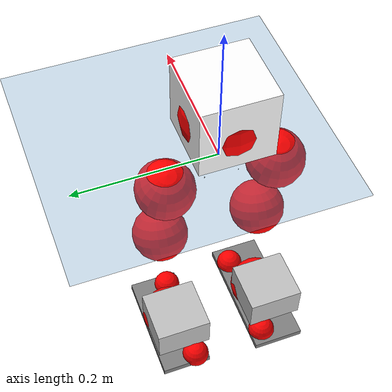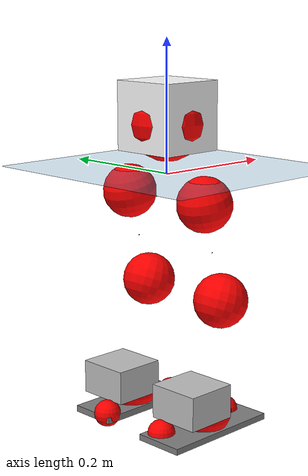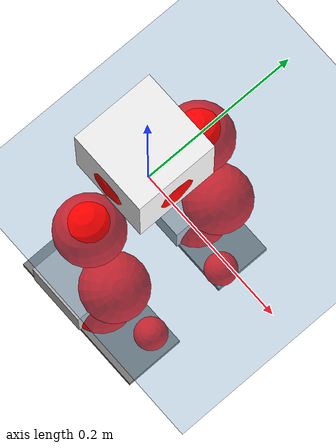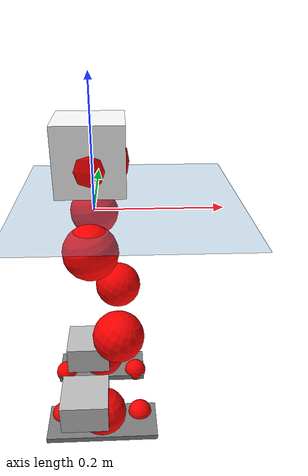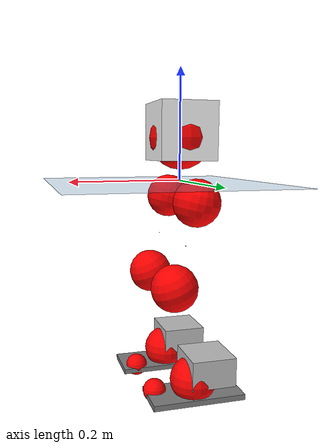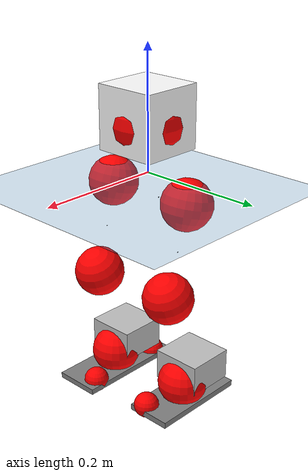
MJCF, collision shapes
<mujoco model="pi_12dof_release_v1">
  <compiler angle="radian" assetdir="assets" balanceinertia="true" inertiafromgeom="false"/>

  <option timestep="0.005" density="1.2" viscosity="2e-05"/>

  <size nkey="1"/>

  <visual>
    <quality shadowsize="8192"/>
    <map shadowclip="0.5"/>
  </visual>

  <default>
    <default class="/">
      <joint armature="0.01" damping="0.01" frictionloss="0.01"/>
      <geom contype="0" conaffinity="0" group="1" solref="-1000 -80"/>
      <site size="0.01 0.005 0.005" group="5"/>
      <general forcelimited="true" biastype="affine" gainprm="20" biasprm="0 -20 -0.5"/>
      <default class="foot">
        <geom size="0.0845 0.036 0.005" type="box" condim="6" group="4" priority="1" friction="0.9 0.2 0.2" solimp="0.015 1 0.005"/>
      </default>
      <default class="reward_collision_sphere">
        <geom group="5" rgba="1 0 0 1"/>
      </default>
    </default>
  </default>

  <asset>
    <texture type="skybox" colorspace="auto" name="//unnamed_texture_0" builtin="gradient" rgb1="0.95 0.95 0.95" rgb2="0.95 0.95 0.95" width="100" height="600"/>
    <texture type="2d" colorspace="auto" name="texplane" builtin="checker" rgb1="0.345 0.575 0.748" rgb2="0.345 0.575 0.748" markrgb="1 1 1" width="512" height="512"/>
    <material name="MatPlane" class="/" texture="texplane" texuniform="true" texrepeat="2 2" specular="0.9"/>
    <mesh name="baselink_1" class="/" file="baselink_1.STL"/>
    <mesh name="r_hip_pitch_link" class="/" file="r_hip_pitch_link.STL"/>
    <mesh name="r_hip_roll_link" class="/" file="r_hip_roll_link.STL"/>
    <mesh name="r_thigh_link" class="/" file="r_thigh_link.STL"/>
    <mesh name="r_calf_link" class="/" file="r_calf_link.STL"/>
    <mesh name="r_ankle_pitch_link" class="/" file="r_ankle_pitch_link.STL"/>
    <mesh name="r_ankle_roll_link" class="/" file="r_ankle_roll_link.STL"/>
    <mesh name="l_hip_pitch_link" class="/" file="l_hip_pitch_link.STL"/>
    <mesh name="l_hip_roll_link" class="/" file="l_hip_roll_link.STL"/>
    <mesh name="l_thigh_link" class="/" file="l_thigh_link.STL"/>
    <mesh name="l_calf_link" class="/" file="l_calf_link.STL"/>
    <mesh name="l_ankle_pitch_link" class="/" file="l_ankle_pitch_link.STL"/>
    <mesh name="l_ankle_roll_link" class="/" file="l_ankle_roll_link.STL"/>
  </asset>

  <worldbody>
    <geom name="floor" class="/" size="100 100 0.125" type="plane" group="0" material="MatPlane"/>
    <light name="toplight_shadow" class="/" pos="0 0 5" dir="0.0990148 0.0990148 -0.990148" type="directional" ambient="0.04 0.04 0.04" diffuse="0.55 0.55 0.55" specular="0.12 0.12 0.12"/>
    <light name="toplight_fill" class="/" pos="0 0 5" dir="0.0990148 0.0990148 -0.990148" type="directional" castshadow="false" ambient="0.04 0.04 0.04" diffuse="0.3 0.3 0.3" specular="0.08 0.08 0.08"/>
    <body name="trunk" pos="-0.00165419 -0.00283819 -0.00165935" quat="0.999999 8.96749e-05 -0.00111833 0.00068807">
      <inertial pos="0.00107997 -0.00108904 0.0450533" quat="0.697161 0.00222786 0.0104981 0.716834" mass="2.35481" diaginertia="0.010184 0.00713396 0.00727391"/>
      <joint name="//unnamed_joint_0" type="free"/>
      <geom name="//unnamed_geom_1" class="/" type="mesh" density="0" rgba="1 1 1 1" mesh="baselink_1"/>
      <geom name="//unnamed_geom_2" class="/" size="0.0513354 0.0513354 0.0513354" pos="0 0 0.0890019" type="box" rgba="1 1 1 1"/>
      <geom name="//unnamed_geom_3" class="reward_collision_sphere" size="0.0564689" pos="0 0 0.0778767"/>
      <site name="imu" class="/" pos="-0.000902566 0.00711139 -0.00250356" size="0.0102671"/>
      <camera name="track" class="/" pos="0 -1.91473 0" quat="0.707107 0.707107 0 0" mode="trackcom"/>
      <camera name="ego_camera" class="/" pos="0.0757677 0 0.200254" quat="-0.5 -0.5 0.5 0.5"/>
      <body name="r_hip_pitch_link" pos="-0.00234472 -0.0245391 -0.0341685" quat="0.992128 0.000583654 -0.125228 0.000314504">
        <inertial pos="-0.000172924 -0.0563199 -0.0023039" quat="-0.0190308 0.707597 -0.0311637 0.705672" mass="0.417094" diaginertia="0.000118658 7.91988e-05 0.000150411"/>
        <joint name="r_hip_pitch_joint" class="/" pos="0 0 0" axis="-0.00973589 -0.99993 0.00675182" stiffness="0.000785735" range="-1.74721 1.26903" armature="0.0102492" damping="0.0047071" frictionloss="0.0117219"/>
        <geom name="//unnamed_geom_4" class="/" type="mesh" density="0" rgba="0.75294 0.75294 0.75294 1" mesh="r_hip_pitch_link"/>
        <geom name="//unnamed_geom_5" class="/" size="0.000513354 0.000513354 0.000513354" type="box" rgba="0.75294 0.75294 0.75294 1"/>
        <body name="r_hip_roll_link" pos="0.000536791 -0.0532146 0.00174525" quat="1 -1.58173e-05 -2.95405e-05 1.34247e-06">
          <inertial pos="-0.000181593 -0.00117884 -0.0655641" quat="0.706403 -0.0794115 -0.0779728 0.699006" mass="0.421871" diaginertia="0.00035857 0.000226384 0.000215925"/>
          <joint name="r_hip_roll_joint" class="/" pos="0 0 0" axis="-1 8.99346e-06 2.35614e-05" stiffness="0.0113045" range="-0.171799 0.544672" armature="0.00908214" damping="0" frictionloss="0.0100948"/>
          <geom name="//unnamed_geom_6" class="/" type="mesh" density="0" rgba="0.75294 0.75294 0.75294 1" mesh="r_hip_roll_link"/>
          <geom name="//unnamed_geom_7" class="/" size="0.000513354 0.000513354 0.000513354" type="box" rgba="0.75294 0.75294 0.75294 1"/>
          <geom name="//unnamed_geom_8" class="reward_collision_sphere" size="0.0410683"/>
          <body name="r_thigh_link" pos="-0.00107762 0.000961645 -0.0762915" quat="0.999999 0.000508032 0.000604821 -0.00116121">
            <inertial pos="0.00287608 0.00300076 -0.0555609" quat="0.733801 0.679287 0.007263 0.00730196" mass="0.12305" diaginertia="0.000129899 7.85197e-05 9.53331e-05"/>
            <joint name="r_thigh_joint" class="/" pos="0 0 0" axis="0.000779513 -0.012193 -0.999925" range="-0.29616 0.652291" armature="0.00899369" damping="0.0151279" frictionloss="0.0106791"/>
            <geom name="//unnamed_geom_9" class="/" type="mesh" density="0" rgba="0.75294 0.75294 0.75294 1" mesh="r_thigh_link"/>
            <geom name="//unnamed_geom_10" class="/" size="0.000513354 0.000513354 0.000513354" type="box" rgba="0.75294 0.75294 0.75294 1"/>
            <body name="r_calf_link" pos="-0.000802069 -0.000461348 -0.0785826" quat="0.94768 -0.000520402 0.31922 0.000973161">
              <inertial pos="0.00234619 -0.000101003 -0.0775672" quat="0.999968 -0.00612031 -0.000523152 0.00504702" mass="0.917665" diaginertia="0.00387496 0.00291989 0.000297259"/>
              <joint name="r_calf_joint" class="/" pos="0 0 0" axis="-0.00281628 -0.999993 -0.00230043" stiffness="0.00737991" range="-1.63672 0.600333" armature="0.0108684" damping="0.00511006" frictionloss="0.0108552"/>
              <geom name="//unnamed_geom_11" class="/" type="mesh" density="0" rgba="0.75294 0.75294 0.75294 1" mesh="r_calf_link"/>
              <geom name="//unnamed_geom_12" class="/" size="0.000513354 0.000513354 0.000513354" type="box" rgba="0.75294 0.75294 0.75294 1"/>
              <geom name="//unnamed_geom_13" class="reward_collision_sphere" size="0.0410683"/>
              <body name="r_ankle_pitch_link" pos="-0.000507265 0.000496244 -0.153479" quat="0.97994 0.000535288 -0.19929 0.00042478">
                <inertial pos="0.00198222 0.00233649 -0.000983287" quat="0.000249458 0.707327 0.00190367 0.706884" mass="0.184469" diaginertia="0.00032008 0.000170841 0.00019392"/>
                <joint name="r_ankle_pitch_joint" class="/" pos="0 0 0" axis="0.00665298 -0.999978 0.000781815" range="-1.35021 0.555151" armature="0.0107362" damping="0.0134327" frictionloss="0.00880945"/>
                <geom name="//unnamed_geom_14" class="/" type="mesh" density="0" rgba="0.75294 0.75294 0.75294 1" mesh="r_ankle_pitch_link"/>
                <geom name="//unnamed_geom_15" class="/" size="0.0400416 0.0410683 0.0256677" type="box" rgba="0.75294 0.75294 0.75294 1"/>
                <body name="r_ankle_roll_link" pos="0.0794761 0.00234742 -0.000421463" quat="1 -6.49028e-06 -1.05947e-05 4.24562e-07">
                  <inertial pos="-0.0212617 0.000290699 -0.0167635" quat="0.563399 0.428151 0.433746 0.557793" mass="0.58259" diaginertia="0.00126694 0.000825979 0.0004947"/>
                  <joint name="r_ankle_roll_joint" class="/" pos="0 0 0" axis="-0.999997 -0.00211446 0.000997838" range="-0.129192 0.100175" armature="0.00990532" damping="0" frictionloss="0.0103867"/>
                  <geom name="//unnamed_geom_16" class="/" type="mesh" density="0" rgba="0.75294 0.75294 0.75294 1" mesh="r_ankle_roll_link"/>
                  <geom name="//unnamed_geom_17" class="/" type="mesh" rgba="0.75294 0.75294 0.75294 1" mesh="r_ankle_roll_link"/>
                  <geom name="right_foot" class="foot" size="0.0951148 0.038684 0.0045998" pos="-0.051522 0 -0.0489511"/>
                  <geom name="//unnamed_geom_19" class="reward_collision_sphere" size="0.0410683" pos="-0.0505118 0 -0.0222505"/>
                  <geom name="//unnamed_geom_20" class="reward_collision_sphere" size="0.0205342" pos="0.0151535 0.0191473 -0.044501"/>
                  <geom name="//unnamed_geom_21" class="reward_collision_sphere" size="0.0205342" pos="-0.121228 0.0191473 -0.044501"/>
                  <site name="right_foot" class="foot" pos="-0.051522 0 -0.0489511" size="0.0102671"/>
                </body>
              </body>
            </body>
          </body>
        </body>
      </body>
      <body name="l_hip_pitch_link" pos="-0.00023436 0.022907 -0.0340869" quat="0.992185 0.00013986 -0.124778 2.37011e-05">
        <inertial pos="0.00249226 0.051348 -0.000672231" quat="-0.0385095 0.70562 0.029583 0.706925" mass="0.417924" diaginertia="0.000134013 8.67729e-05 0.000169525"/>
        <joint name="l_hip_pitch_joint" class="/" pos="0 0 0" axis="-1.8368e-05 1 0.000252225" range="-1.19336 1.7452" armature="0.0116831" damping="0" frictionloss="0.0112417"/>
        <geom name="//unnamed_geom_22" class="/" type="mesh" density="0" rgba="0.75294 0.75294 0.75294 1" mesh="l_hip_pitch_link"/>
        <geom name="//unnamed_geom_23" class="/" size="0.000513354 0.000513354 0.000513354" type="box" rgba="0.75294 0.75294 0.75294 1"/>
        <body name="l_hip_roll_link" pos="-0.00213945 0.0558215 0.00261912" quat="1 -0.000272503 0.000630201 -0.000676419">
          <inertial pos="-0.000933583 0.000761305 -0.0677892" quat="0.699864 -0.0683407 -0.0686641 0.707676" mass="0.407949" diaginertia="0.000354007 0.000216056 0.00022251"/>
          <joint name="l_hip_roll_joint" class="/" pos="0 0 0" axis="-0.999965 0.000559804 0.00835581" stiffness="0.00267169" range="-0.518171 0.081983" armature="0.0117228" damping="0.00486545" frictionloss="0.0114783"/>
          <geom name="//unnamed_geom_24" class="/" type="mesh" density="0" rgba="0.75294 0.75294 0.75294 1" mesh="l_hip_roll_link"/>
          <geom name="//unnamed_geom_25" class="/" size="0.000513354 0.000513354 0.000513354" type="box" rgba="0.75294 0.75294 0.75294 1"/>
          <geom name="//unnamed_geom_26" class="reward_collision_sphere" size="0.0410683"/>
          <body name="l_thigh_link" pos="0.000387388 3.39421e-05 -0.0747771" quat="1 -0.000332411 -0.000223597 -0.000252159">
            <inertial pos="3.75445e-05 -0.00160275 -0.0502075" quat="0.675843 0.737045 0.000434454 0.000279141" mass="0.122513" diaginertia="0.000131628 7.62594e-05 0.000100334"/>
            <joint name="l_thigh_joint" class="/" pos="0 0 0" axis="-0.000607973 0.00199571 -0.999998" stiffness="0.00211933" range="-0.6066 0.317283" armature="0.00880018" damping="0.00653031" frictionloss="0.0107396"/>
            <geom name="//unnamed_geom_27" class="/" type="mesh" density="0" rgba="0.75294 0.75294 0.75294 1" mesh="l_thigh_link"/>
            <geom name="//unnamed_geom_28" class="/" size="0.000513354 0.000513354 0.000513354" type="box" rgba="0.75294 0.75294 0.75294 1"/>
            <body name="l_calf_link" pos="-0.000326337 -0.00221583 -0.0758533" quat="0.948066 0.000259486 0.318074 0.00061494">
              <inertial pos="0.00030385 0.00592722 -0.0775023" quat="0.999885 0.00307556 0.00477529 0.0140923" mass="0.880511" diaginertia="0.00382366 0.00290845 0.000290611"/>
              <joint name="l_calf_joint" class="/" pos="0 0 0" axis="0.00209056 0.999988 -0.00434335" range="-0.638592 1.63486" armature="0.0096001" damping="0.0138369" frictionloss="0.0110652"/>
              <geom name="//unnamed_geom_29" class="/" type="mesh" density="0" rgba="0.75294 0.75294 0.75294 1" mesh="l_calf_link"/>
              <geom name="//unnamed_geom_30" class="/" size="0.000513354 0.000513354 0.000513354" type="box" rgba="0.75294 0.75294 0.75294 1"/>
              <geom name="//unnamed_geom_31" class="reward_collision_sphere" size="0.0410683"/>
              <body name="l_ankle_pitch_link" pos="0.000469975 -0.00123343 -0.158621" quat="0.979921 -0.000431493 -0.199382 -0.000667284">
                <inertial pos="0.00535617 -0.00328093 -0.000252229" quat="8.37743e-05 0.706728 0.00229136 0.707481" mass="0.181495" diaginertia="0.000310288 0.000173882 0.000195049"/>
                <joint name="l_ankle_pitch_joint" class="/" pos="0 0 0" axis="0.000483137 0.999996 -0.00271918" stiffness="0.00177258" range="-0.497739 1.29875" armature="0.0101969" damping="0.0142185" frictionloss="0.0112584"/>
                <geom name="//unnamed_geom_32" class="/" type="mesh" density="0" rgba="0.75294 0.75294 0.75294 1" mesh="l_ankle_pitch_link"/>
                <geom name="//unnamed_geom_33" class="/" size="0.0400416 0.0410683 0.0256677" type="box" rgba="0.75294 0.75294 0.75294 1"/>
                <body name="l_ankle_roll_link" pos="0.0756263 0.00265216 0.000382123" quat="1 0.000152592 -0.000119337 -1.26945e-05">
                  <inertial pos="-0.0232385 0.00019212 -0.0135333" quat="0.553973 0.433242 0.43275 0.564041" mass="0.559206" diaginertia="0.00120677 0.000785481 0.000490696"/>
                  <joint name="l_ankle_roll_joint" class="/" pos="0 0 0" axis="-0.999906 -0.0135613 0.00190394" range="-0.165678 0.156031" armature="0.00982901" damping="0.0225383" frictionloss="0.0103978"/>
                  <geom name="//unnamed_geom_34" class="/" type="mesh" density="0" rgba="0.75294 0.75294 0.75294 1" mesh="l_ankle_roll_link"/>
                  <geom name="//unnamed_geom_35" class="/" type="mesh" rgba="0.75294 0.75294 0.75294 1" mesh="l_ankle_roll_link"/>
                  <geom name="left_foot" class="foot" size="0.083325 0.0372547 0.00500996" pos="-0.051522 0 -0.0489511"/>
                  <geom name="//unnamed_geom_37" class="reward_collision_sphere" size="0.0410683" pos="-0.0505118 0 -0.0222505"/>
                  <geom name="//unnamed_geom_38" class="reward_collision_sphere" size="0.0205342" pos="0.0151535 -0.0191473 -0.044501"/>
                  <geom name="//unnamed_geom_39" class="reward_collision_sphere" size="0.0205342" pos="-0.121228 -0.0191473 -0.044501"/>
                  <site name="left_foot" class="foot" pos="-0.051522 0 -0.0489511" size="0.0102671"/>
                </body>
              </body>
            </body>
          </body>
        </body>
      </body>
    </body>
  </worldbody>

  <contact>
    <pair class="/" geom1="floor" geom2="right_foot" name="//unnamed_contact_1"/>
    <pair class="/" geom1="floor" geom2="left_foot" name="//unnamed_contact_0"/>
  </contact>

  <actuator>
    <general name="r_hip_pitch_joint" class="/" joint="r_hip_pitch_joint" forcerange="-21.7531 21.7531" gainprm="20.1567" biasprm="0 -20.1567 -0.479665"/>
    <general name="r_hip_roll_joint" class="/" joint="r_hip_roll_joint" forcerange="-21.7936 21.7936" gainprm="20.1567" biasprm="0 -20.1567 -0.479665"/>
    <general name="r_thigh_joint" class="/" joint="r_thigh_joint" forcerange="-21.4002 21.4002" gainprm="20.1567" biasprm="0 -20.1567 -0.479665"/>
    <general name="r_calf_joint" class="/" joint="r_calf_joint" forcerange="-21.9839 21.9839" gainprm="20.1567" biasprm="0 -20.1567 -0.479665"/>
    <general name="r_ankle_pitch_joint" class="/" joint="r_ankle_pitch_joint" forcerange="-21.2468 21.2468" gainprm="20.1567" biasprm="0 -20.1567 -0.479665"/>
    <general name="r_ankle_roll_joint" class="/" joint="r_ankle_roll_joint" forcerange="-21.91 21.91" gainprm="20.1567" biasprm="0 -20.1567 -0.479665"/>
    <general name="l_hip_pitch_joint" class="/" joint="l_hip_pitch_joint" forcerange="-22.0471 22.0471" gainprm="20.1567" biasprm="0 -20.1567 -0.479665"/>
    <general name="l_hip_roll_joint" class="/" joint="l_hip_roll_joint" forcerange="-19.603 19.603" gainprm="20.1567" biasprm="0 -20.1567 -0.479665"/>
    <general name="l_thigh_joint" class="/" joint="l_thigh_joint" forcerange="-21.6751 21.6751" gainprm="20.1567" biasprm="0 -20.1567 -0.479665"/>
    <general name="l_calf_joint" class="/" joint="l_calf_joint" forcerange="-22.4413 22.4413" gainprm="20.1567" biasprm="0 -20.1567 -0.479665"/>
    <general name="l_ankle_pitch_joint" class="/" joint="l_ankle_pitch_joint" forcerange="-21.7907 21.7907" gainprm="20.1567" biasprm="0 -20.1567 -0.479665"/>
    <general name="l_ankle_roll_joint" class="/" joint="l_ankle_roll_joint" forcerange="-19.3052 19.3052" gainprm="20.1567" biasprm="0 -20.1567 -0.479665"/>
  </actuator>

  <sensor>
    <gyro site="imu" name="imu_angular_velocity"/>
    <velocimeter site="imu" name="imu_linear_velocity"/>
    <framelinvel objtype="site" objname="left_foot" name="left_foot_global_linear_velocity"/>
    <framelinvel objtype="site" objname="right_foot" name="right_foot_global_linear_velocity"/>
  </sensor>

  <keyframe>
    <key name="home" qpos="0 0 0.291 1 0 0 0 0.4 0 0 -0.8 0.4 0 -0.4 0 0 0.8 -0.4 0"/>
  </keyframe>
</mujoco>
